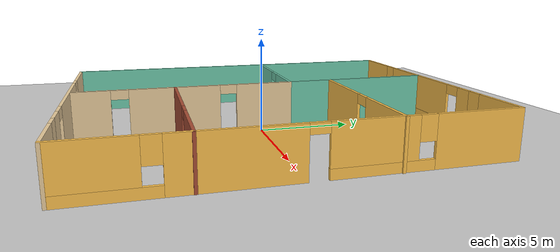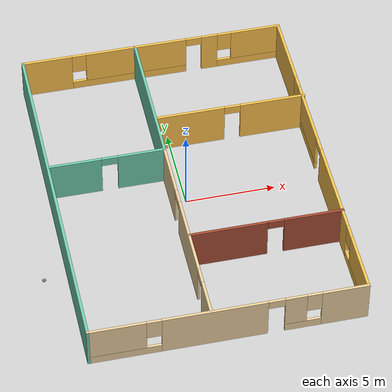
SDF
<sdf version="1.6">
 <world name="default">
  <plugin name="welcome" filename="libwelcome.so"/>
  <light name="sun" type="directional">
   <pose>0 0 10 0 -0 0</pose>
   <diffuse>0.8 0.8 0.8 1</diffuse>
   <specular>0.2 0.2 0.2 1</specular>
   <attenuation>
    <range>1000</range>
    <constant>0.9</constant>
    <linear>0.01</linear>
    <quadratic>0.001</quadratic>
   </attenuation>
   <direction>-0.5 0.1 -0.9</direction>
  </light>
  <model name="ground_plane">
   <static>1</static>
   <link name="link">
    <collision name="collision">
     <geometry><plane><normal>0 0 1</normal><size>100 100</size></plane></geometry>
     <surface>
      <contact><collide_bitmask>65535</collide_bitmask></contact>
      <friction><ode><mu>100</mu><mu2>50</mu2></ode></friction>
     </surface>
    </collision>
    <visual name="visual">
     <cast_shadows>0</cast_shadows>
     <geometry><plane><normal>0 0 1</normal><size>100 100</size></plane></geometry>
     <material>
      <script><uri>file://media/materials/scripts/gazebo.material</uri><name>Gazebo/Grey</name></script>
     </material>
    </visual>
   </link>
  </model>
  <gravity>0 0 -9.8</gravity>
  <magnetic_field>6e-06 2.3e-05 -4.2e-05</magnetic_field>
  <atmosphere type="adiabatic"/>
  <physics name="default_physics" default="0" type="ode">
   <max_step_size>0.001</max_step_size>
   <real_time_factor>1</real_time_factor>
   <real_time_update_rate>1000</real_time_update_rate>
  </physics>
  <scene><ambient>0.4 0.4 0.4 1</ambient><background>0.7 0.7 0.7 1</background><shadows>1</shadows></scene>
  <spherical_coordinates>
   <surface_model>EARTH_WGS84</surface_model>
   <latitude_deg>0</latitude_deg>
   <longitude_deg>0</longitude_deg>
   <elevation>0</elevation>
   <heading_deg>0</heading_deg>
  </spherical_coordinates>
  <model name="TheOffice">
   <pose>0.194983 0.07752 0 0 -0 0</pose>
   <link name="Wall_10">
    <pose>-0.040149 -9.925 0 0 -0 3.14159</pose>
    <visual name="Wall_10_Visual_0">
     <pose>-6.22537 0 1.25 0 -0 0</pose>
     <geometry><box><size>2.54925 0.15 2.5</size></box></geometry>
     <material>
      <script><uri>file://media/materials/scripts/gazebo.material</uri><name>Gazebo/Grey</name></script>
      <ambient>0.921569 0.807843 0.615686 1</ambient>
     </material>
     <meta><layer>0</layer></meta>
    </visual>
    <collision name="Wall_10_Collision_0">
     <geometry><box><size>2.54925 0.15 2.5</size></box></geometry>
     <pose>-6.22537 0 1.25 0 -0 0</pose>
    </collision>
    <visual name="Wall_10_Visual_1">
     <pose>0.736722 0 1.25 0 -0 0</pose>
     <geometry><box><size>5.64147 0.15 2.5</size></box></geometry>
     <material>
      <script><uri>file://media/materials/scripts/gazebo.material</uri><name>Gazebo/Grey</name></script>
      <ambient>0.921569 0.807843 0.615686 1</ambient>
     </material>
     <meta><layer>0</layer></meta>
    </visual>
    <collision name="Wall_10_Collision_1">
     <geometry><box><size>5.64147 0.15 2.5</size></box></geometry>
     <pose>0.736722 0 1.25 0 -0 0</pose>
    </collision>
    <visual name="Wall_10_Visual_2">
     <pose>-3.96738 0 0.25 0 -0 0</pose>
     <geometry><box><size>1.96673 0.15 0.5</size></box></geometry>
     <material>
      <script><uri>file://media/materials/scripts/gazebo.material</uri><name>Gazebo/Grey</name></script>
      <ambient>0.921569 0.807843 0.615686 1</ambient>
     </material>
     <meta><layer>0</layer></meta>
    </visual>
    <collision name="Wall_10_Collision_2">
     <geometry><box><size>1.96673 0.15 0.5</size></box></geometry>
     <pose>-3.96738 0 0.25 0 -0 0</pose>
    </collision>
    <visual name="Wall_10_Visual_3">
     <pose>5.52873 0 0.25 0 -0 0</pose>
     <geometry><box><size>3.94254 0.15 0.5</size></box></geometry>
     <material>
      <script><uri>file://media/materials/scripts/gazebo.material</uri><name>Gazebo/Grey</name></script>
      <ambient>0.921569 0.807843 0.615686 1</ambient>
     </material>
     <meta><layer>0</layer></meta>
    </visual>
    <collision name="Wall_10_Collision_3">
     <geometry><box><size>3.94254 0.15 0.5</size></box></geometry>
     <pose>5.52873 0 0.25 0 -0 0</pose>
    </collision>
    <visual name="Wall_10_Visual_4">
     <pose>-3.56738 0 1.5 0 -0 0</pose>
     <geometry><box><size>1.16673 0.15 2</size></box></geometry>
     <material>
      <script><uri>file://media/materials/scripts/gazebo.material</uri><name>Gazebo/Grey</name></script>
      <ambient>0.921569 0.807843 0.615686 1</ambient>
     </material>
     <meta><layer>0</layer></meta>
    </visual>
    <collision name="Wall_10_Collision_4">
     <geometry><box><size>1.16673 0.15 2</size></box></geometry>
     <pose>-3.56738 0 1.5 0 -0 0</pose>
    </collision>
    <visual name="Wall_10_Visual_5">
     <pose>-3.56738 0 1.5 0 -0 0</pose>
     <geometry><box><size>1.16673 0.15 2</size></box></geometry>
     <material>
      <script><uri>file://media/materials/scripts/gazebo.material</uri><name>Gazebo/Grey</name></script>
      <ambient>0.921569 0.807843 0.615686 1</ambient>
     </material>
     <meta><layer>0</layer></meta>
    </visual>
    <collision name="Wall_10_Collision_5">
     <geometry><box><size>1.16673 0.15 2</size></box></geometry>
     <pose>-3.56738 0 1.5 0 -0 0</pose>
    </collision>
    <visual name="Wall_10_Visual_6">
     <pose>5.92873 0 1.5 0 -0 0</pose>
     <geometry><box><size>3.14254 0.15 2</size></box></geometry>
     <material>
      <script><uri>file://media/materials/scripts/gazebo.material</uri><name>Gazebo/Grey</name></script>
      <ambient>0.921569 0.807843 0.615686 1</ambient>
     </material>
     <meta><layer>0</layer></meta>
    </visual>
    <collision name="Wall_10_Collision_6">
     <geometry><box><size>3.14254 0.15 2</size></box></geometry>
     <pose>5.92873 0 1.5 0 -0 0</pose>
    </collision>
    <visual name="Wall_10_Visual_7">
     <pose>-4.55075 0 1.9 0 -0 0</pose>
     <geometry><box><size>0.8 0.15 1.2</size></box></geometry>
     <material>
      <script><uri>file://media/materials/scripts/gazebo.material</uri><name>Gazebo/Grey</name></script>
      <ambient>0.921569 0.807843 0.615686 1</ambient>
     </material>
     <meta><layer>0</layer></meta>
    </visual>
    <collision name="Wall_10_Collision_7">
     <geometry><box><size>0.8 0.15 1.2</size></box></geometry>
     <pose>-4.55075 0 1.9 0 -0 0</pose>
    </collision>
    <visual name="Wall_10_Visual_8">
     <pose>3.95746 0 1.9 0 -0 0</pose>
     <geometry><box><size>0.8 0.15 1.2</size></box></geometry>
     <material>
      <script><uri>file://media/materials/scripts/gazebo.material</uri><name>Gazebo/Grey</name></script>
      <ambient>0.921569 0.807843 0.615686 1</ambient>
     </material>
     <meta><layer>0</layer></meta>
    </visual>
    <collision name="Wall_10_Collision_8">
     <geometry><box><size>0.8 0.15 1.2</size></box></geometry>
     <pose>3.95746 0 1.9 0 -0 0</pose>
    </collision>
    <visual name="Wall_10_Visual_9">
     <pose>-2.53401 0 2.25 0 -0 0</pose>
     <geometry><box><size>0.9 0.15 0.5</size></box></geometry>
     <material>
      <script><uri>file://media/materials/scripts/gazebo.material</uri><name>Gazebo/Grey</name></script>
      <ambient>0.921569 0.807843 0.615686 1</ambient>
     </material>
     <meta><layer>0</layer></meta>
    </visual>
    <collision name="Wall_10_Collision_9">
     <geometry><box><size>0.9 0.15 0.5</size></box></geometry>
     <pose>-2.53401 0 2.25 0 -0 0</pose>
    </collision>
    <visual name="Wall_10_Visual_10">
     <pose>-2.53401 0 2.25 0 -0 0</pose>
     <geometry><box><size>0.9 0.15 0.5</size></box></geometry>
     <material>
      <script><uri>file://media/materials/scripts/gazebo.material</uri><name>Gazebo/Grey</name></script>
      <ambient>0.921569 0.807843 0.615686 1</ambient>
     </material>
     <meta><layer>0</layer></meta>
    </visual>
    <collision name="Wall_10_Collision_10">
     <geometry><box><size>0.9 0.15 0.5</size></box></geometry>
     <pose>-2.53401 0 2.25 0 -0 0</pose>
    </collision>
   </link>
   <link name="Wall_12">
    <collision name="Wall_12_Collision">
     <geometry><box><size>20 0.15 2.5</size></box></geometry>
     <pose>0 0 1.25 0 -0 0</pose>
    </collision>
    <visual name="Wall_12_Visual">
     <pose>0 0 1.25 0 -0 0</pose>
     <geometry><box><size>20 0.15 2.5</size></box></geometry>
     <material>
      <script><uri>file://media/materials/scripts/gazebo.material</uri><name>Gazebo/Grey</name></script>
      <ambient>0.435294 0.796078 0.67451 1</ambient>
     </material>
     <meta><layer>0</layer></meta>
    </visual>
    <pose>-7.46515 0 0 0 -0 1.5708</pose>
   </link>
   <link name="Wall_14">
    <pose>-0.040149 9.925 0 0 -0 0</pose>
    <visual name="Wall_14_Visual_0">
     <pose>-6.05843 0 1.25 0 -0 0</pose>
     <geometry><box><size>2.88314 0.15 2.5</size></box></geometry>
     <material>
      <script><uri>file://media/materials/scripts/gazebo.material</uri><name>Gazebo/Grey</name></script>
      <ambient>1 0.764706 0.305882 1</ambient>
     </material>
     <meta><layer>0</layer></meta>
    </visual>
    <collision name="Wall_14_Collision_0">
     <geometry><box><size>2.88314 0.15 2.5</size></box></geometry>
     <pose>-6.05843 0 1.25 0 -0 0</pose>
    </collision>
    <visual name="Wall_14_Visual_1">
     <pose>3.37201 0 1.25 0 -0 0</pose>
     <geometry><box><size>0.93492 0.15 2.5</size></box></geometry>
     <material>
      <script><uri>file://media/materials/scripts/gazebo.material</uri><name>Gazebo/Grey</name></script>
      <ambient>1 0.764706 0.305882 1</ambient>
     </material>
     <meta><layer>0</layer></meta>
    </visual>
    <collision name="Wall_14_Collision_1">
     <geometry><box><size>0.93492 0.15 2.5</size></box></geometry>
     <pose>3.37201 0 1.25 0 -0 0</pose>
    </collision>
    <visual name="Wall_14_Visual_2">
     <pose>-1.30615 0 0.25 0 -0 0</pose>
     <geometry><box><size>6.62141 0.15 0.5</size></box></geometry>
     <material>
      <script><uri>file://media/materials/scripts/gazebo.material</uri><name>Gazebo/Grey</name></script>
      <ambient>1 0.764706 0.305882 1</ambient>
     </material>
     <meta><layer>0</layer></meta>
    </visual>
    <collision name="Wall_14_Collision_2">
     <geometry><box><size>6.62141 0.15 0.5</size></box></geometry>
     <pose>-1.30615 0 0.25 0 -0 0</pose>
    </collision>
    <visual name="Wall_14_Visual_3">
     <pose>5.66974 0 0.25 0 -0 0</pose>
     <geometry><box><size>3.66053 0.15 0.5</size></box></geometry>
     <material>
      <script><uri>file://media/materials/scripts/gazebo.material</uri><name>Gazebo/Grey</name></script>
      <ambient>1 0.764706 0.305882 1</ambient>
     </material>
     <meta><layer>0</layer></meta>
    </visual>
    <collision name="Wall_14_Collision_3">
     <geometry><box><size>3.66053 0.15 0.5</size></box></geometry>
     <pose>5.66974 0 0.25 0 -0 0</pose>
    </collision>
    <visual name="Wall_14_Visual_4">
     <pose>-0.906151 0 1.5 0 -0 0</pose>
     <geometry><box><size>5.82141 0.15 2</size></box></geometry>
     <material>
      <script><uri>file://media/materials/scripts/gazebo.material</uri><name>Gazebo/Grey</name></script>
      <ambient>1 0.764706 0.305882 1</ambient>
     </material>
     <meta><layer>0</layer></meta>
    </visual>
    <collision name="Wall_14_Collision_4">
     <geometry><box><size>5.82141 0.15 2</size></box></geometry>
     <pose>-0.906151 0 1.5 0 -0 0</pose>
    </collision>
    <visual name="Wall_14_Visual_5">
     <pose>-0.906151 0 1.5 0 -0 0</pose>
     <geometry><box><size>5.82141 0.15 2</size></box></geometry>
     <material>
      <script><uri>file://media/materials/scripts/gazebo.material</uri><name>Gazebo/Grey</name></script>
      <ambient>1 0.764706 0.305882 1</ambient>
     </material>
     <meta><layer>0</layer></meta>
    </visual>
    <collision name="Wall_14_Collision_5">
     <geometry><box><size>5.82141 0.15 2</size></box></geometry>
     <pose>-0.906151 0 1.5 0 -0 0</pose>
    </collision>
    <visual name="Wall_14_Visual_6">
     <pose>6.06974 0 1.5 0 -0 0</pose>
     <geometry><box><size>2.86053 0.15 2</size></box></geometry>
     <material>
      <script><uri>file://media/materials/scripts/gazebo.material</uri><name>Gazebo/Grey</name></script>
      <ambient>1 0.764706 0.305882 1</ambient>
     </material>
     <meta><layer>0</layer></meta>
    </visual>
    <collision name="Wall_14_Collision_6">
     <geometry><box><size>2.86053 0.15 2</size></box></geometry>
     <pose>6.06974 0 1.5 0 -0 0</pose>
    </collision>
    <visual name="Wall_14_Visual_7">
     <pose>-4.21685 0 1.9 0 -0 0</pose>
     <geometry><box><size>0.8 0.15 1.2</size></box></geometry>
     <material>
      <script><uri>file://media/materials/scripts/gazebo.material</uri><name>Gazebo/Grey</name></script>
      <ambient>1 0.764706 0.305882 1</ambient>
     </material>
     <meta><layer>0</layer></meta>
    </visual>
    <collision name="Wall_14_Collision_7">
     <geometry><box><size>0.8 0.15 1.2</size></box></geometry>
     <pose>-4.21685 0 1.9 0 -0 0</pose>
    </collision>
    <visual name="Wall_14_Visual_8">
     <pose>4.23947 0 1.9 0 -0 0</pose>
     <geometry><box><size>0.8 0.15 1.2</size></box></geometry>
     <material>
      <script><uri>file://media/materials/scripts/gazebo.material</uri><name>Gazebo/Grey</name></script>
      <ambient>1 0.764706 0.305882 1</ambient>
     </material>
     <meta><layer>0</layer></meta>
    </visual>
    <collision name="Wall_14_Collision_8">
     <geometry><box><size>0.8 0.15 1.2</size></box></geometry>
     <pose>4.23947 0 1.9 0 -0 0</pose>
    </collision>
    <visual name="Wall_14_Visual_9">
     <pose>2.45455 0 2.25 0 -0 0</pose>
     <geometry><box><size>0.9 0.15 0.5</size></box></geometry>
     <material>
      <script><uri>file://media/materials/scripts/gazebo.material</uri><name>Gazebo/Grey</name></script>
      <ambient>1 0.764706 0.305882 1</ambient>
     </material>
     <meta><layer>0</layer></meta>
    </visual>
    <collision name="Wall_14_Collision_9">
     <geometry><box><size>0.9 0.15 0.5</size></box></geometry>
     <pose>2.45455 0 2.25 0 -0 0</pose>
    </collision>
    <visual name="Wall_14_Visual_10">
     <pose>2.45455 0 2.25 0 -0 0</pose>
     <geometry><box><size>0.9 0.15 0.5</size></box></geometry>
     <material>
      <script><uri>file://media/materials/scripts/gazebo.material</uri><name>Gazebo/Grey</name></script>
      <ambient>1 0.764706 0.305882 1</ambient>
     </material>
     <meta><layer>0</layer></meta>
    </visual>
    <collision name="Wall_14_Collision_10">
     <geometry><box><size>0.9 0.15 0.5</size></box></geometry>
     <pose>2.45455 0 2.25 0 -0 0</pose>
    </collision>
   </link>
   <link name="Wall_15">
    <pose>7.38485 0 0 0 0 -1.5708</pose>
    <visual name="Wall_15_Visual_0">
     <pose>-7.83118 0 1.25 0 -0 0</pose>
     <geometry><box><size>4.33764 0.15 2.5</size></box></geometry>
     <material>
      <script><uri>file://media/materials/scripts/gazebo.material</uri><name>Gazebo/Grey</name></script>
      <ambient>1 0.764706 0.305882 1</ambient>
     </material>
     <meta><layer>0</layer></meta>
    </visual>
    <collision name="Wall_15_Collision_0">
     <geometry><box><size>4.33764 0.15 2.5</size></box></geometry>
     <pose>-7.83118 0 1.25 0 -0 0</pose>
    </collision>
    <visual name="Wall_15_Visual_1">
     <pose>2.90769 0 1.25 0 -0 0</pose>
     <geometry><box><size>5.68679 0.15 2.5</size></box></geometry>
     <material>
      <script><uri>file://media/materials/scripts/gazebo.material</uri><name>Gazebo/Grey</name></script>
      <ambient>1 0.764706 0.305882 1</ambient>
     </material>
     <meta><layer>0</layer></meta>
    </visual>
    <collision name="Wall_15_Collision_1">
     <geometry><box><size>5.68679 0.15 2.5</size></box></geometry>
     <pose>2.90769 0 1.25 0 -0 0</pose>
    </collision>
    <visual name="Wall_15_Visual_2">
     <pose>-3.24903 0 0.25 0 -0 0</pose>
     <geometry><box><size>4.82665 0.15 0.5</size></box></geometry>
     <material>
      <script><uri>file://media/materials/scripts/gazebo.material</uri><name>Gazebo/Grey</name></script>
      <ambient>1 0.764706 0.305882 1</ambient>
     </material>
     <meta><layer>0</layer></meta>
    </visual>
    <collision name="Wall_15_Collision_2">
     <geometry><box><size>4.82665 0.15 0.5</size></box></geometry>
     <pose>-3.24903 0 0.25 0 -0 0</pose>
    </collision>
    <visual name="Wall_15_Visual_3">
     <pose>7.87554 0 0.25 0 -0 0</pose>
     <geometry><box><size>4.24891 0.15 0.5</size></box></geometry>
     <material>
      <script><uri>file://media/materials/scripts/gazebo.material</uri><name>Gazebo/Grey</name></script>
      <ambient>1 0.764706 0.305882 1</ambient>
     </material>
     <meta><layer>0</layer></meta>
    </visual>
    <collision name="Wall_15_Collision_3">
     <geometry><box><size>4.24891 0.15 0.5</size></box></geometry>
     <pose>7.87554 0 0.25 0 -0 0</pose>
    </collision>
    <visual name="Wall_15_Visual_4">
     <pose>-2.84903 0 1.5 0 -0 0</pose>
     <geometry><box><size>4.02665 0.15 2</size></box></geometry>
     <material>
      <script><uri>file://media/materials/scripts/gazebo.material</uri><name>Gazebo/Grey</name></script>
      <ambient>1 0.764706 0.305882 1</ambient>
     </material>
     <meta><layer>0</layer></meta>
    </visual>
    <collision name="Wall_15_Collision_4">
     <geometry><box><size>4.02665 0.15 2</size></box></geometry>
     <pose>-2.84903 0 1.5 0 -0 0</pose>
    </collision>
    <visual name="Wall_15_Visual_5">
     <pose>-2.84903 0 1.5 0 -0 0</pose>
     <geometry><box><size>4.02665 0.15 2</size></box></geometry>
     <material>
      <script><uri>file://media/materials/scripts/gazebo.material</uri><name>Gazebo/Grey</name></script>
      <ambient>1 0.764706 0.305882 1</ambient>
     </material>
     <meta><layer>0</layer></meta>
    </visual>
    <collision name="Wall_15_Collision_5">
     <geometry><box><size>4.02665 0.15 2</size></box></geometry>
     <pose>-2.84903 0 1.5 0 -0 0</pose>
    </collision>
    <visual name="Wall_15_Visual_6">
     <pose>8.27554 0 1.5 0 -0 0</pose>
     <geometry><box><size>3.44891 0.15 2</size></box></geometry>
     <material>
      <script><uri>file://media/materials/scripts/gazebo.material</uri><name>Gazebo/Grey</name></script>
      <ambient>1 0.764706 0.305882 1</ambient>
     </material>
     <meta><layer>0</layer></meta>
    </visual>
    <collision name="Wall_15_Collision_6">
     <geometry><box><size>3.44891 0.15 2</size></box></geometry>
     <pose>8.27554 0 1.5 0 -0 0</pose>
    </collision>
    <visual name="Wall_15_Visual_7">
     <pose>-5.26236 0 1.9 0 -0 0</pose>
     <geometry><box><size>0.8 0.15 1.2</size></box></geometry>
     <material>
      <script><uri>file://media/materials/scripts/gazebo.material</uri><name>Gazebo/Grey</name></script>
      <ambient>1 0.764706 0.305882 1</ambient>
     </material>
     <meta><layer>0</layer></meta>
    </visual>
    <collision name="Wall_15_Collision_7">
     <geometry><box><size>0.8 0.15 1.2</size></box></geometry>
     <pose>-5.26236 0 1.9 0 -0 0</pose>
    </collision>
    <visual name="Wall_15_Visual_8">
     <pose>6.15109 0 1.9 0 -0 0</pose>
     <geometry><box><size>0.8 0.15 1.2</size></box></geometry>
     <material>
      <script><uri>file://media/materials/scripts/gazebo.material</uri><name>Gazebo/Grey</name></script>
      <ambient>1 0.764706 0.305882 1</ambient>
     </material>
     <meta><layer>0</layer></meta>
    </visual>
    <collision name="Wall_15_Collision_8">
     <geometry><box><size>0.8 0.15 1.2</size></box></geometry>
     <pose>6.15109 0 1.9 0 -0 0</pose>
    </collision>
    <visual name="Wall_15_Visual_9">
     <pose>-0.385703 0 2.25 0 -0 0</pose>
     <geometry><box><size>0.9 0.15 0.5</size></box></geometry>
     <material>
      <script><uri>file://media/materials/scripts/gazebo.material</uri><name>Gazebo/Grey</name></script>
      <ambient>1 0.764706 0.305882 1</ambient>
     </material>
     <meta><layer>0</layer></meta>
    </visual>
    <collision name="Wall_15_Collision_9">
     <geometry><box><size>0.9 0.15 0.5</size></box></geometry>
     <pose>-0.385703 0 2.25 0 -0 0</pose>
    </collision>
    <visual name="Wall_15_Visual_10">
     <pose>-0.385703 0 2.25 0 -0 0</pose>
     <geometry><box><size>0.9 0.15 0.5</size></box></geometry>
     <material>
      <script><uri>file://media/materials/scripts/gazebo.material</uri><name>Gazebo/Grey</name></script>
      <ambient>1 0.764706 0.305882 1</ambient>
     </material>
     <meta><layer>0</layer></meta>
    </visual>
    <collision name="Wall_15_Collision_10">
     <geometry><box><size>0.9 0.15 0.5</size></box></geometry>
     <pose>-0.385703 0 2.25 0 -0 0</pose>
    </collision>
   </link>
   <link name="Wall_18">
    <collision name="Wall_18_Collision">
     <geometry><box><size>8.25 0.15 2.5</size></box></geometry>
     <pose>0 0 1.25 0 -0 0</pose>
    </collision>
    <visual name="Wall_18_Visual">
     <pose>0 0 1.25 0 -0 0</pose>
     <geometry><box><size>8.25 0.15 2.5</size></box></geometry>
     <material>
      <script><uri>file://media/materials/scripts/gazebo.material</uri><name>Gazebo/Grey</name></script>
      <ambient>0.435294 0.796078 0.67451 1</ambient>
     </material>
     <meta><layer>0</layer></meta>
    </visual>
    <pose>-0.988608 5.83138 0 0 0 -1.5708</pose>
   </link>
   <link name="Wall_19">
    <pose>-4.16361 1.78138 0 0 -0 3.14159</pose>
    <visual name="Wall_19_Visual_0">
     <pose>-1.90706 0 1.25 0 -0 0</pose>
     <geometry><box><size>2.68588 0.15 2.5</size></box></geometry>
     <material>
      <script><uri>file://media/materials/scripts/gazebo.material</uri><name>Gazebo/Grey</name></script>
      <ambient>0.435294 0.796078 0.67451 1</ambient>
     </material>
     <meta><layer>0</layer></meta>
    </visual>
    <collision name="Wall_19_Collision_0">
     <geometry><box><size>2.68588 0.15 2.5</size></box></geometry>
     <pose>-1.90706 0 1.25 0 -0 0</pose>
    </collision>
    <visual name="Wall_19_Visual_1">
     <pose>1.79294 0 1.25 0 -0 0</pose>
     <geometry><box><size>2.91412 0.15 2.5</size></box></geometry>
     <material>
      <script><uri>file://media/materials/scripts/gazebo.material</uri><name>Gazebo/Grey</name></script>
      <ambient>0.435294 0.796078 0.67451 1</ambient>
     </material>
     <meta><layer>0</layer></meta>
    </visual>
    <collision name="Wall_19_Collision_1">
     <geometry><box><size>2.91412 0.15 2.5</size></box></geometry>
     <pose>1.79294 0 1.25 0 -0 0</pose>
    </collision>
    <visual name="Wall_19_Visual_2">
     <pose>-0.11412 0 2.25 0 -0 0</pose>
     <geometry><box><size>0.9 0.15 0.5</size></box></geometry>
     <material>
      <script><uri>file://media/materials/scripts/gazebo.material</uri><name>Gazebo/Grey</name></script>
      <ambient>0.435294 0.796078 0.67451 1</ambient>
     </material>
     <meta><layer>0</layer></meta>
    </visual>
    <collision name="Wall_19_Collision_2">
     <geometry><box><size>0.9 0.15 0.5</size></box></geometry>
     <pose>-0.11412 0 2.25 0 -0 0</pose>
    </collision>
   </link>
   <link name="Wall_22">
    <pose>-0.988608 -4.01862 0 0 0 -1.5708</pose>
    <visual name="Wall_22_Visual_0">
     <pose>-4.30202 0 1.25 0 -0 0</pose>
     <geometry><box><size>3.14597 0.15 2.5</size></box></geometry>
     <material>
      <script><uri>file://media/materials/scripts/gazebo.material</uri><name>Gazebo/Grey</name></script>
      <ambient>0.921569 0.807843 0.615686 1</ambient>
     </material>
     <meta><layer>0</layer></meta>
    </visual>
    <collision name="Wall_22_Collision_0">
     <geometry><box><size>3.14597 0.15 2.5</size></box></geometry>
     <pose>-4.30202 0 1.25 0 -0 0</pose>
    </collision>
    <visual name="Wall_22_Visual_1">
     <pose>0.574328 0 1.25 0 -0 0</pose>
     <geometry><box><size>4.80672 0.15 2.5</size></box></geometry>
     <material>
      <script><uri>file://media/materials/scripts/gazebo.material</uri><name>Gazebo/Grey</name></script>
      <ambient>0.921569 0.807843 0.615686 1</ambient>
     </material>
     <meta><layer>0</layer></meta>
    </visual>
    <collision name="Wall_22_Collision_1">
     <geometry><box><size>4.80672 0.15 2.5</size></box></geometry>
     <pose>0.574328 0 1.25 0 -0 0</pose>
    </collision>
    <visual name="Wall_22_Visual_2">
     <pose>4.87634 0 1.25 0 -0 0</pose>
     <geometry><box><size>1.99731 0.15 2.5</size></box></geometry>
     <material>
      <script><uri>file://media/materials/scripts/gazebo.material</uri><name>Gazebo/Grey</name></script>
      <ambient>0.921569 0.807843 0.615686 1</ambient>
     </material>
     <meta><layer>0</layer></meta>
    </visual>
    <collision name="Wall_22_Collision_2">
     <geometry><box><size>1.99731 0.15 2.5</size></box></geometry>
     <pose>4.87634 0 1.25 0 -0 0</pose>
    </collision>
    <visual name="Wall_22_Visual_3">
     <pose>-2.27903 0 2.25 0 -0 0</pose>
     <geometry><box><size>0.9 0.15 0.5</size></box></geometry>
     <material>
      <script><uri>file://media/materials/scripts/gazebo.material</uri><name>Gazebo/Grey</name></script>
      <ambient>0.921569 0.807843 0.615686 1</ambient>
     </material>
     <meta><layer>0</layer></meta>
    </visual>
    <collision name="Wall_22_Collision_3">
     <geometry><box><size>0.9 0.15 0.5</size></box></geometry>
     <pose>-2.27903 0 2.25 0 -0 0</pose>
    </collision>
    <visual name="Wall_22_Visual_4">
     <pose>3.42769 0 2.25 0 -0 0</pose>
     <geometry><box><size>0.9 0.15 0.5</size></box></geometry>
     <material>
      <script><uri>file://media/materials/scripts/gazebo.material</uri><name>Gazebo/Grey</name></script>
      <ambient>0.921569 0.807843 0.615686 1</ambient>
     </material>
     <meta><layer>0</layer></meta>
    </visual>
    <collision name="Wall_22_Collision_4">
     <geometry><box><size>0.9 0.15 0.5</size></box></geometry>
     <pose>3.42769 0 2.25 0 -0 0</pose>
    </collision>
   </link>
   <link name="Wall_24">
    <pose>3.29015 4.17465 0 0 -0 0</pose>
    <visual name="Wall_24_Visual_0">
     <pose>-2.31045 0 1.25 0 -0 0</pose>
     <geometry><box><size>3.8791 0.15 2.5</size></box></geometry>
     <material>
      <script><uri>file://media/materials/scripts/gazebo.material</uri><name>Gazebo/Grey</name></script>
      <ambient>1 0.764706 0.305882 1</ambient>
     </material>
     <meta><layer>0</layer></meta>
    </visual>
    <collision name="Wall_24_Collision_0">
     <geometry><box><size>3.8791 0.15 2.5</size></box></geometry>
     <pose>-2.31045 0 1.25 0 -0 0</pose>
    </collision>
    <visual name="Wall_24_Visual_1">
     <pose>2.38955 0 1.25 0 -0 0</pose>
     <geometry><box><size>3.7209 0.15 2.5</size></box></geometry>
     <material>
      <script><uri>file://media/materials/scripts/gazebo.material</uri><name>Gazebo/Grey</name></script>
      <ambient>1 0.764706 0.305882 1</ambient>
     </material>
     <meta><layer>0</layer></meta>
    </visual>
    <collision name="Wall_24_Collision_1">
     <geometry><box><size>3.7209 0.15 2.5</size></box></geometry>
     <pose>2.38955 0 1.25 0 -0 0</pose>
    </collision>
    <visual name="Wall_24_Visual_2">
     <pose>0.079103 0 2.25 0 -0 0</pose>
     <geometry><box><size>0.9 0.15 0.5</size></box></geometry>
     <material>
      <script><uri>file://media/materials/scripts/gazebo.material</uri><name>Gazebo/Grey</name></script>
      <ambient>1 0.764706 0.305882 1</ambient>
     </material>
     <meta><layer>0</layer></meta>
    </visual>
    <collision name="Wall_24_Collision_2">
     <geometry><box><size>0.9 0.15 0.5</size></box></geometry>
     <pose>0.079103 0 2.25 0 -0 0</pose>
    </collision>
   </link>
   <link name="Wall_26">
    <pose>3.23827 -4.59295 0 0 -0 0</pose>
    <visual name="Wall_26_Visual_0">
     <pose>-2.10293 0 1.25 0 -0 0</pose>
     <geometry><box><size>4.29414 0.15 2.5</size></box></geometry>
     <material>
      <script><uri>file://media/materials/scripts/gazebo.material</uri><name>Gazebo/Bricks</name></script>
      <ambient>1 0.764706 0.305882 1</ambient>
     </material>
     <meta><layer>0</layer></meta>
    </visual>
    <collision name="Wall_26_Collision_0">
     <geometry><box><size>4.29414 0.15 2.5</size></box></geometry>
     <pose>-2.10293 0 1.25 0 -0 0</pose>
    </collision>
    <visual name="Wall_26_Visual_1">
     <pose>2.59707 0 1.25 0 -0 0</pose>
     <geometry><box><size>3.30586 0.15 2.5</size></box></geometry>
     <material>
      <script><uri>file://media/materials/scripts/gazebo.material</uri><name>Gazebo/Bricks</name></script>
      <ambient>1 0.764706 0.305882 1</ambient>
     </material>
     <meta><layer>0</layer></meta>
    </visual>
    <collision name="Wall_26_Collision_1">
     <geometry><box><size>3.30586 0.15 2.5</size></box></geometry>
     <pose>2.59707 0 1.25 0 -0 0</pose>
    </collision>
    <visual name="Wall_26_Visual_2">
     <pose>0.494138 0 2.25 0 -0 0</pose>
     <geometry><box><size>0.9 0.15 0.5</size></box></geometry>
     <material>
      <script><uri>file://media/materials/scripts/gazebo.material</uri><name>Gazebo/Bricks</name></script>
      <ambient>1 0.764706 0.305882 1</ambient>
     </material>
     <meta><layer>0</layer></meta>
    </visual>
    <collision name="Wall_26_Collision_2">
     <geometry><box><size>0.9 0.15 0.5</size></box></geometry>
     <pose>0.494138 0 2.25 0 -0 0</pose>
    </collision>
   </link>
   <static>1</static>
  </model>
  <model name="my_ball">
   <link name="link_0">
    <inertial>
     <mass>1</mass>
     <inertia><ixx>0.1</ixx><ixy>0</ixy><ixz>0</ixz><iyy>0.1</iyy><iyz>0</iyz><izz>0.1</izz></inertia>
    </inertial>
    <visual name="visual">
     <geometry><sphere><radius>0.1</radius></sphere></geometry>
     <material>
      <lighting>1</lighting>
      <script><uri>file://media/materials/scripts/gazebo.material</uri><name>Gazebo/Grey</name></script>
      <shader type="pixel"><normal_map>__default__</normal_map></shader>
      <ambient>1 1 1 1</ambient>
      <diffuse>1 1 1 1</diffuse>
      <specular>1 1 1 1</specular>
      <emissive>1 1 1 1</emissive>
     </material>
    </visual>
    <collision name="collision">
     <geometry><sphere><radius>0.1</radius></sphere></geometry>
     <surface>
      <friction>
       <ode><mu>1</mu><mu2>1</mu2><fdir1>0 0 0</fdir1><slip1>0</slip1><slip2>0</slip2></ode>
       <torsional>
        <coefficient>1</coefficient>
        <patch_radius>0</patch_radius>
        <surface_radius>0</surface_radius>
        <use_patch_radius>1</use_patch_radius>
        <ode><slip>0</slip></ode>
       </torsional>
      </friction>
      <bounce><restitution_coefficient>0</restitution_coefficient><threshold>1e+06</threshold></bounce>
      <contact>
       <collide_without_contact>0</collide_without_contact>
       <collide_without_contact_bitmask>1</collide_without_contact_bitmask>
       <collide_bitmask>1</collide_bitmask>
       <ode>
        <soft_cfm>0</soft_cfm>
        <soft_erp>0.2</soft_erp>
        <kp>1e+13</kp>
        <kd>1</kd>
        <max_vel>0.01</max_vel>
        <min_depth>0</min_depth>
       </ode>
       <bullet>
        <split_impulse>1</split_impulse>
        <split_impulse_penetration_threshold>-0.01</split_impulse_penetration_threshold>
        <soft_cfm>0</soft_cfm>
        <soft_erp>0.2</soft_erp>
        <kp>1e+13</kp>
        <kd>1</kd>
       </bullet>
      </contact>
     </surface>
    </collision>
   </link>
   <static>0</static>
   <pose>-8.59243 -3.96742 0.1 0 -0 0</pose>
  </model>
  <plugin name="collision_map_creator" filename="libcollision_map_creator.so"/>
 </world>
</sdf>
